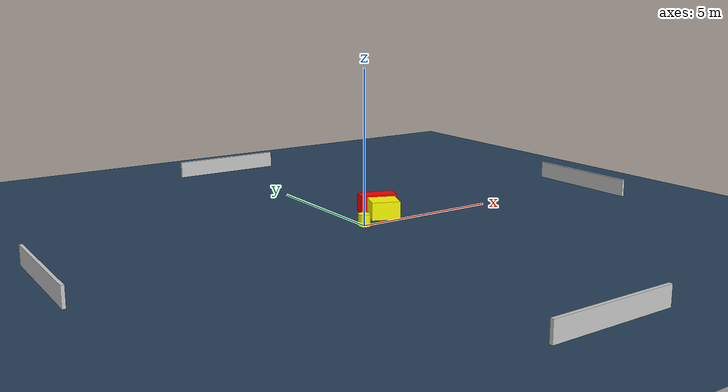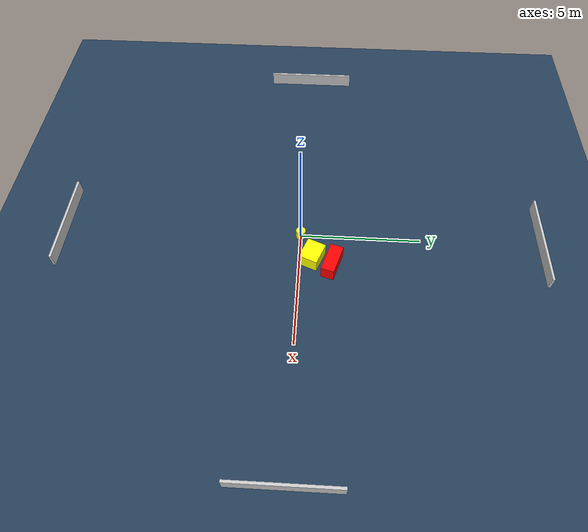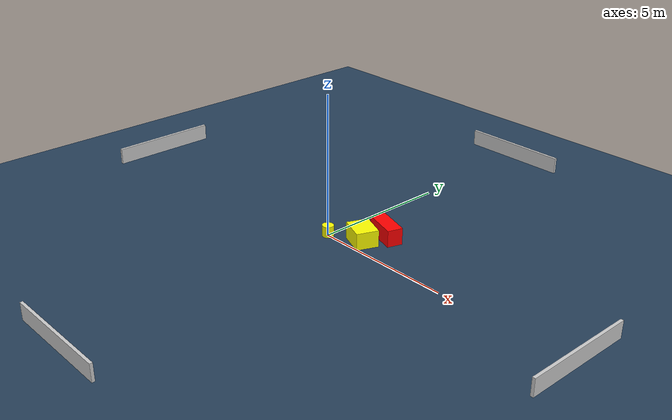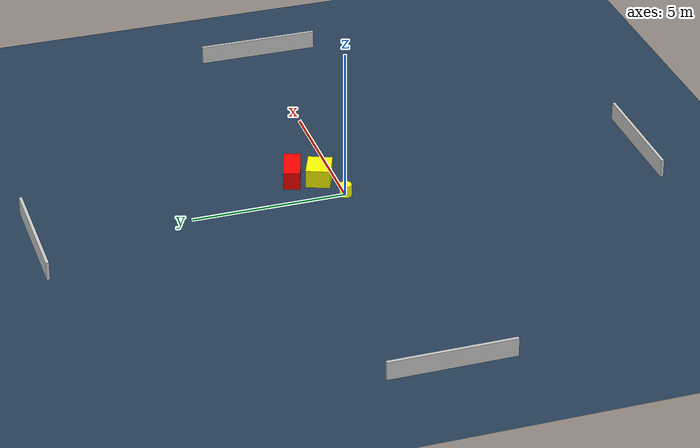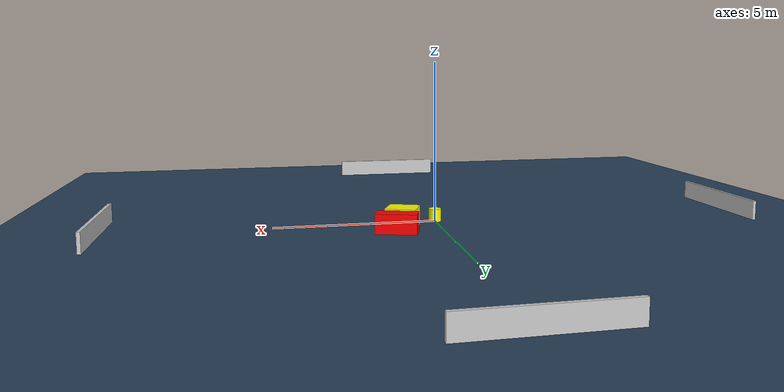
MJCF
<?xml version="1.0" ?>
<mujoco model="generated_environment">
  <option timestep="0.01" integrator="RK4" cone="elliptic"/>
  <default>
    <geom density="1"/>
  </default>
  <asset>
    <texture builtin="gradient" height="3072" name="skybox" rgb1="0.3 0.5 0.7" rgb2="0 0 0" type="skybox" width="512"/>
    <texture builtin="checker" height="300" name="groundplane" rgb1="0.2 0.3 0.4" rgb2="0.1 0.2 0.3" type="2d" width="300"/>
    <material name="groundplane" reflectance="0.2" texrepeat="5 5" texture="groundplane"/>
  </asset>
  <worldbody>
    <light dir="0 0 -1" directional="true" pos="0 0 1.5"/>
    <geom condim="3" friction="0.5 0.005 0.001" material="groundplane" name="floor" pos="0 0 0" size="0 0 0.05" type="plane"/>
    <body name="walls">
      <geom name="wall_1" condim="4" pos="-10.0 0.0 0.3" rgba="0.800000011920929 0.800000011920929 0.800000011920929 1.0" size="0.05 2.0 0.3" type="box"/>
      <geom name="wall_2" condim="4" pos="10.0 0.0 0.3" rgba="0.800000011920929 0.800000011920929 0.800000011920929 1.0" size="0.05 2.0 0.3" type="box"/>
      <geom name="wall_3" condim="4" pos="0.0 -10.0 0.3" rgba="0.800000011920929 0.800000011920929 0.800000011920929 1.0" size="2.0 0.05 0.3" type="box"/>
      <geom name="wall_4" condim="4" pos="0.0 10.0 0.3" rgba="0.800000011920929 0.800000011920929 0.800000011920929 1.0" size="2.0 0.05 0.3" type="box"/>
    </body>
    <body name="robot">
      <joint name="joint_x" type="slide" pos="0 0 0" axis="1 0 0"/>
      <joint name="joint_y" type="slide" pos="0 0 0" axis="0 1 0"/>
      <geom name="robot" type="cylinder" pos="0.0 0.0 0.2" size="0.2 0.2 0.0" mass="5.0" friction="1.0 0.005 0.0001" condim="4" rgba="1.0 1.0 0.0 1.0"/>
    </body>
    <body name="obstacle_1_movable">
      <geom name="obstacle_1_movable" condim="4" pos="1.1241192714017325 0.5236284214808554 0.3" euler="0 0 157.8765496399925" friction="0.0 0.005 0.001" rgba="1.0 1.0 0.0 1.0" size="0.4736613677239684 0.3949528355275067 0.3" type="box" mass="0.1"/>
      <joint type="free"/>
    </body>
    <body name="obstacle_2_static">
      <geom name="obstacle_2_static" condim="4" pos="1.4319890238765582 1.3379075540483425 0.3" euler="0 0 342.6349212327571" friction="0.0 0.005 0.001" rgba="1.0 0.0 0.0 1.0" size="0.6271803394941777 0.2734918377897391 0.3" type="box"/>
    </body>
  </worldbody>
  <actuator>
    <motor name="actuator_x" joint="joint_x" gear="1" ctrlrange="-1 1"/>
    <motor name="actuator_y" joint="joint_y" gear="1" ctrlrange="-1 1"/>
  </actuator>
</mujoco>
